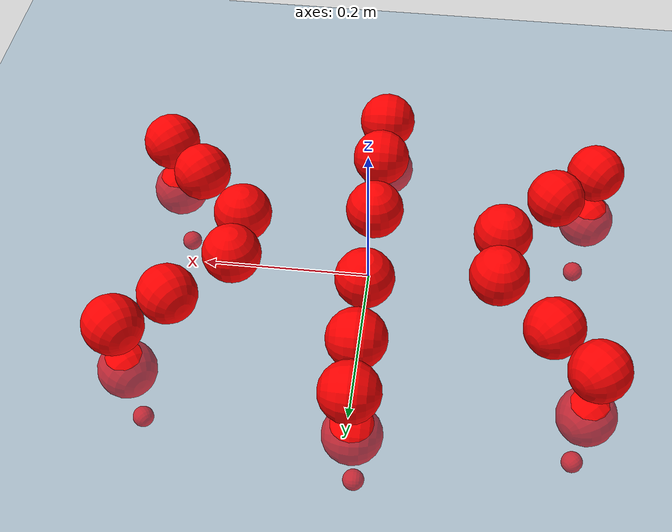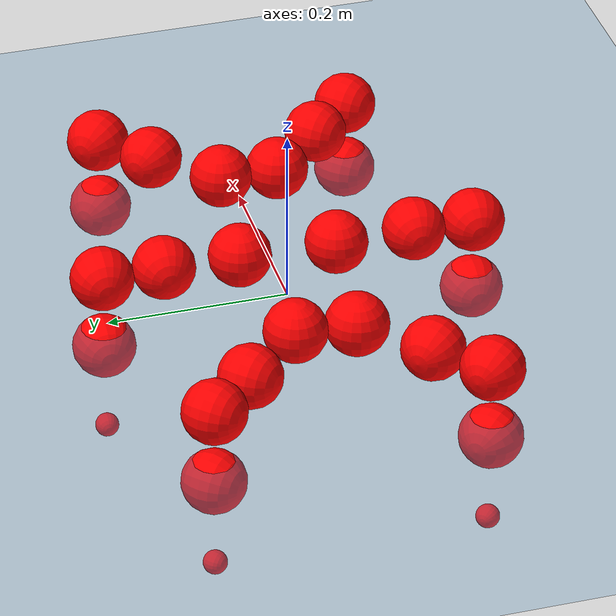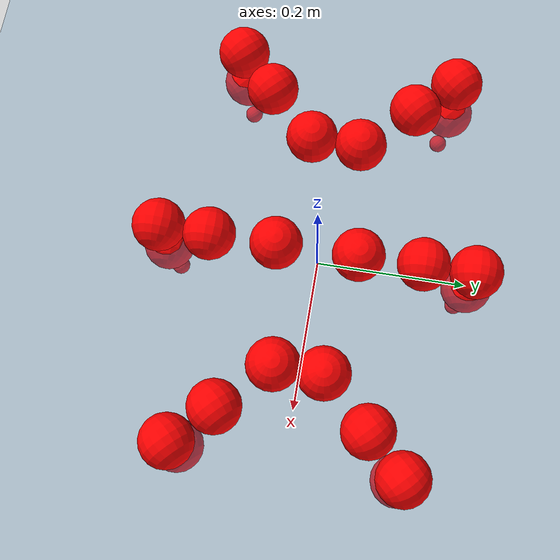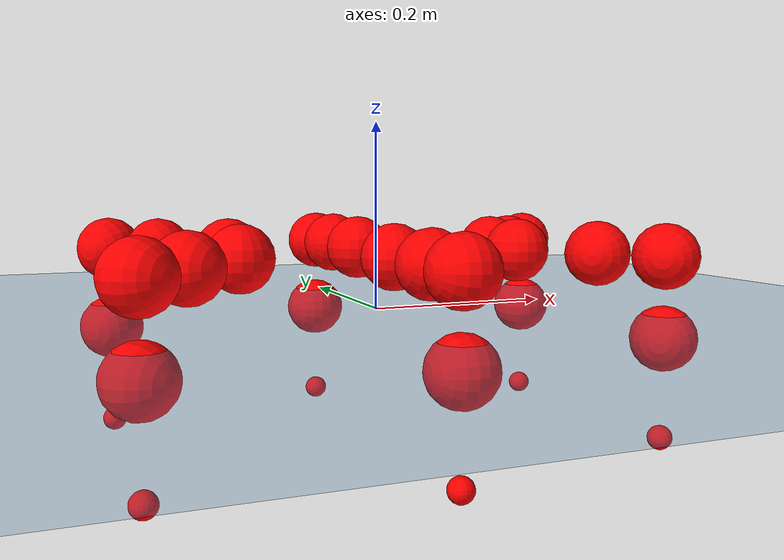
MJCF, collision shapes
<mujoco model="Golem">
  <compiler angle="radian" assetdir="assets" balanceinertia="true" inertiafromgeom="false"/>

  <option timestep="0.005" density="1.2" viscosity="2e-05"/>

  <size nkey="1"/>

  <visual>
    <quality shadowsize="8192"/>
    <map shadowclip="0.5"/>
  </visual>

  <default>
    <default class="/">
      <joint armature="0.01" damping="0.01" frictionloss="0.01"/>
      <geom contype="0" conaffinity="0" group="1" solref="-1000 -80"/>
      <site size="0.01 0.005 0.005" group="5"/>
      <general forcelimited="true" biastype="affine" gainprm="25" biasprm="0 -25 -0.5"/>
      <default class="visual">
        <geom type="mesh" group="2"/>
      </default>
      <default class="collision">
        <geom group="3"/>
      </default>
      <default class="foot">
        <geom size="0.01 0 0" condim="6" group="4" priority="1" solimp="0.015 1 0.01"/>
      </default>
      <default class="reward_collision_sphere">
        <geom group="5" rgba="1 0 0 1"/>
      </default>
    </default>
  </default>

  <asset>
    <texture type="skybox" colorspace="auto" name="//unnamed_texture_0" builtin="gradient" rgb1="0.95 0.95 0.95" rgb2="0.95 0.95 0.95" width="100" height="600"/>
    <texture type="2d" colorspace="auto" name="texplane" builtin="checker" rgb1="0.345 0.575 0.748" rgb2="0.345 0.575 0.748" markrgb="1 1 1" width="512" height="512"/>
    <material name="MatPlane" class="/" texture="texplane" texuniform="true" texrepeat="2 2" specular="0.9"/>
    <mesh name="body" class="/" file="body.stl" scale="0.001 0.001 0.001"/>
    <mesh name="coxa" class="/" file="coxa.stl" scale="0.001 0.001 0.001"/>
    <mesh name="femur" class="/" file="femur.stl" scale="0.001 0.001 0.001"/>
    <mesh name="tibia" class="/" file="tibia.stl" scale="0.001 0.001 0.001"/>
    <mesh name="tarsus" class="/" file="tarsus.stl" scale="0.001 0.001 0.001"/>
  </asset>

  <worldbody>
    <geom name="floor" class="/" size="100 100 0.125" type="plane" group="0" material="MatPlane"/>
    <light name="toplight_shadow" class="/" pos="0 0 5" dir="0.0990148 0.0990148 -0.990148" type="directional" ambient="0.04 0.04 0.04" diffuse="0.55 0.55 0.55" specular="0.12 0.12 0.12"/>
    <light name="toplight_fill" class="/" pos="0 0 5" dir="0.0990148 0.0990148 -0.990148" type="directional" castshadow="false" ambient="0.04 0.04 0.04" diffuse="0.3 0.3 0.3" specular="0.08 0.08 0.08"/>
    <body name="trunk" pos="-0.000134401 2.12251e-05 5.00337e-05" quat="1 0.000261628 -0.00010091 0.000713138">
      <inertial pos="6.10474e-05 0.0016559 -0.00199061" quat="0.999994 0.00109384 0.00221139 0.00259371" mass="2.41615" diaginertia="0.00945687 0.00108266 0.00845429"/>
      <joint name="//unnamed_joint_0" type="free"/>
      <geom name="//unnamed_geom_1" class="/" pos="0 0 0.0620718" quat="1 0 0 0" type="mesh" rgba="0.9 0.9 0.9 1" mesh="body"/>
      <site name="imu" class="/" pos="0.130452 0.00388546 0.101337" size="0.00867999"/>
      <camera name="track" class="/" pos="0 -1.28339 0" quat="0.707107 0.707107 0 0" mode="trackcom"/>
      <camera name="ego_camera" class="/" pos="0.129016 0 0.0969872" quat="-0.5 -0.5 0.5 0.5"/>
      <body name="coxa_RR" pos="-0.176877 -0.0532215 0.0616908" quat="0.382901 2.12832e-05 0.000526685 -0.923789">
        <inertial pos="-0.000467071 -0.000834833 -0.000742718" quat="0.999953 -0.00629776 0.0049022 -0.00548207" mass="0.135744" diaginertia="0.00978327 0.00109285 0.00879254"/>
        <joint name="coxa_joint_RR" class="/" pos="0 0 0" axis="-0.0014221 -0.000879366 -0.999999" range="-3.1421 3.10025" armature="0.00947316" damping="0.0027033" frictionloss="0.00859127"/>
        <geom name="//unnamed_geom_2" class="/" type="mesh" rgba="0.2 0.2 0.2 1" mesh="coxa"/>
        <geom name="//unnamed_geom_3" class="reward_collision_sphere" size="0.03472" pos="-0.0297729 0 0"/>
        <body name="femur_RR" pos="0.0592198 0.0013439 -0.000951299" quat="0.499995 -0.499931 0.500011 0.500064">
          <inertial pos="0.00126999 -0.00106509 0.000412322" quat="0.999983 -0.00426671 0.0039207 0.000389123" mass="0.130669" diaginertia="0.00955184 0.00108119 0.00857668"/>
          <joint name="femur_joint_RR" class="/" pos="0 0 0" axis="-0.000143803 0.000368531 -1" range="-3.15266 3.14737" armature="0.00874325" damping="0.00216029" frictionloss="0.00825653"/>
          <geom name="//unnamed_geom_4" class="/" type="mesh" rgba="0.9 0.9 0.9 1" mesh="femur"/>
          <geom name="//unnamed_geom_5" class="reward_collision_sphere" size="0.03472"/>
          <body name="tibia_RR" pos="0.000534681 -0.0689273 -0.000240964" quat="0.000201387 1 0.000128222 -0.000134539">
            <inertial pos="-0.000193733 0.000764161 9.35358e-06" quat="0.999988 -0.000606379 -0.00346521 -0.00336885" mass="0.133568" diaginertia="0.0094834 0.00108024 0.00859715"/>
            <joint name="tibia_joint_RR" class="/" pos="0 0 0" axis="-0.00260781 -0.00342447 0.999991" range="-3.12044 3.14509" armature="0.00869464" damping="0" frictionloss="0.00853983"/>
            <geom name="//unnamed_geom_6" class="/" type="mesh" rgba="0.2 0.2 0.2 1" mesh="tibia"/>
            <geom name="//unnamed_geom_7" class="reward_collision_sphere" size="0.03472"/>
            <body name="tarsus_RR" pos="0.0866214 0.00138294 0.000199037" quat="1 -0.000295604 -7.93013e-07 -4.59605e-05">
              <inertial pos="0.0611467 0.000411335 0.000834852" quat="0.500008 0.500012 0.499995 0.499986" mass="0.133064" diaginertia="0.00976931 0.00110351 0.00872858"/>
              <joint name="tarsus_joint_RR" class="/" pos="0 0 0" axis="0.000393558 0.000529505 1" stiffness="0.00375717" range="-3.13433 3.13724" armature="0.00888437" damping="0.0393939" frictionloss="0.00845489"/>
              <geom name="//unnamed_geom_8" class="/" type="mesh" rgba="0.9 0.9 0.9 1" mesh="tarsus"/>
              <geom name="foot_1" class="foot" size="0.00865951" pos="0.111152 0 0" quat="0 -0.707107 0 0.707107"/>
              <geom name="//unnamed_geom_10" class="reward_collision_sphere" size="0.03472"/>
              <geom name="//unnamed_geom_11" class="reward_collision_sphere" size="0.01302" pos="0.106686 0 0"/>
              <site name="foot_1" class="foot" pos="0.111152 0 0" quat="0 -0.707107 0 0.707107" size="0.00867999"/>
            </body>
          </body>
        </body>
      </body>
      <body name="coxa_RM" pos="-0.00170881 -0.084506 0.0605338" quat="0.707029 0.000160493 -0.000445881 -0.707184">
        <inertial pos="-0.00092531 0.000196594 0.000383259" quat="0.999999 0.000931444 0.00111585 0.000733988" mass="0.133243" diaginertia="0.00990224 0.00109399 0.00869474"/>
        <joint name="coxa_joint_RM" class="/" pos="0 0 0" axis="-0.000276501 9.15955e-05 -1" range="-3.13006 3.1333" armature="0.00872078" damping="0.00771178" frictionloss="0.00881285"/>
        <geom name="//unnamed_geom_12" class="/" type="mesh" rgba="0.2 0.2 0.2 1" mesh="coxa"/>
        <geom name="//unnamed_geom_13" class="reward_collision_sphere" size="0.03472" pos="-0.0297729 0 0"/>
        <body name="femur_RM" pos="0.0578568 0.00108907 0.000457355" quat="0.50005 -0.500239 0.500078 0.499632">
          <inertial pos="0.000476172 0.000421384 -0.000961604" quat="0.999962 0.00799132 -0.000333603 0.00334725" mass="0.126139" diaginertia="0.00950484 0.00106037 0.00839612"/>
          <joint name="femur_joint_RM" class="/" pos="0 0 0" axis="-0.000913404 -0.000359098 -1" range="-3.17635 3.14927" armature="0.00882194" damping="0.00921778" frictionloss="0.00868235"/>
          <geom name="//unnamed_geom_14" class="/" type="mesh" rgba="0.9 0.9 0.9 1" mesh="femur"/>
          <geom name="//unnamed_geom_15" class="reward_collision_sphere" size="0.03472"/>
          <body name="tibia_RM" pos="-0.000274483 -0.0671638 -0.00133963" quat="-0.000142093 1 -0.000860216 -0.000138604">
            <inertial pos="-8.15434e-05 -0.000840169 0.000489157" quat="0.999999 0.000389546 0.000557579 0.00148072" mass="0.130725" diaginertia="0.00959645 0.00106533 0.00833111"/>
            <joint name="tibia_joint_RM" class="/" pos="0 0 0" axis="-0.000889443 0.00033033 1" range="-3.14165 3.13769" armature="0.0084806" damping="0.00158589" frictionloss="0.00887251"/>
            <geom name="//unnamed_geom_16" class="/" type="mesh" rgba="0.2 0.2 0.2 1" mesh="tibia"/>
            <geom name="//unnamed_geom_17" class="reward_collision_sphere" size="0.03472"/>
            <body name="tarsus_RM" pos="0.0879107 0.000290594 0.000337537" quat="1 7.61849e-05 0.000297921 0.000489149">
              <inertial pos="0.0598236 0.000258534 7.58221e-05" quat="0.498573 0.501096 0.497337 0.502975" mass="0.130702" diaginertia="0.00956342 0.001087 0.00843904"/>
              <joint name="tarsus_joint_RM" class="/" pos="0 0 0" axis="0.00349108 -0.00265647 0.99999" range="-3.13892 3.17597" armature="0.00896268" damping="0.006136" frictionloss="0.0078725"/>
              <geom name="//unnamed_geom_18" class="/" type="mesh" rgba="0.9 0.9 0.9 1" mesh="tarsus"/>
              <geom name="foot_2" class="foot" size="0.00846643" pos="0.111152 0 0" quat="0 -0.707107 0 0.707107"/>
              <geom name="//unnamed_geom_20" class="reward_collision_sphere" size="0.03472"/>
              <geom name="//unnamed_geom_21" class="reward_collision_sphere" size="0.01302" pos="0.106686 0 0"/>
              <site name="foot_2" class="foot" pos="0.111152 0 0" quat="0 -0.707107 0 0.707107" size="0.00867999"/>
            </body>
          </body>
        </body>
      </body>
      <body name="coxa_RF" pos="0.1755 -0.0528476 0.0613654" quat="0.923868 2.38847e-05 0.000490764 -0.38271">
        <inertial pos="0.00154231 0.00139312 0.000101155" quat="0.999999 0.000107513 -0.00108514 -0.000644902" mass="0.131664" diaginertia="0.00967305 0.00109593 0.00856735"/>
        <joint name="coxa_joint_RF" class="/" pos="0 0 0" axis="-0.000720009 -9.67086e-05 -1" range="-3.15805 3.10928" armature="0.00912048" damping="0.00658807" frictionloss="0.00890573"/>
        <geom name="//unnamed_geom_22" class="/" type="mesh" rgba="0.2 0.2 0.2 1" mesh="coxa"/>
        <geom name="//unnamed_geom_23" class="reward_collision_sphere" size="0.03472" pos="-0.0297729 0 0"/>
        <body name="femur_RF" pos="0.058291 0.00016052 -0.000703797" quat="0.500302 -0.500143 0.499788 0.499767">
          <inertial pos="0.000311921 0.000335484 0.00180643" quat="0.999991 0.00406257 8.46113e-05 0.00151406" mass="0.12754" diaginertia="0.00944146 0.00106657 0.00825294"/>
          <joint name="femur_joint_RF" class="/" pos="0 0 0" axis="0.00821771 0.00435099 -0.999957" range="-3.14831 3.15157" armature="0.00953971" damping="0.00971246" frictionloss="0.0088204"/>
          <geom name="//unnamed_geom_24" class="/" type="mesh" rgba="0.9 0.9 0.9 1" mesh="femur"/>
          <geom name="//unnamed_geom_25" class="reward_collision_sphere" size="0.03472"/>
          <body name="tibia_RF" pos="0.000894233 -0.0699645 0.000147189" quat="-0.000255086 1 0.000302709 0.000296075">
            <inertial pos="0.000621942 7.08606e-05 0.000383133" quat="0.999997 0.00101713 0.000278712 0.00207845" mass="0.129909" diaginertia="0.00961552 0.00107767 0.00873856"/>
            <joint name="tibia_joint_RF" class="/" pos="0 0 0" axis="-0.00026399 0.000728889 1" range="-3.14202 3.16628" armature="0.00886547" damping="0.0104205" frictionloss="0.00829477"/>
            <geom name="//unnamed_geom_26" class="/" type="mesh" rgba="0.2 0.2 0.2 1" mesh="tibia"/>
            <geom name="//unnamed_geom_27" class="reward_collision_sphere" size="0.03472"/>
            <body name="tarsus_RF" pos="0.0861355 0.000312527 8.609e-05" quat="1 -0.000217196 0.000104076 0.000810223">
              <inertial pos="0.0588599 -6.28368e-05 -0.000409984" quat="0.499001 0.499659 0.500356 0.500982" mass="0.131288" diaginertia="0.00968889 0.00109181 0.00851207"/>
              <joint name="tarsus_joint_RF" class="/" pos="0 0 0" axis="-0.00497431 -0.00711588 0.999962" range="-3.14403 3.13456" armature="0.00871278" damping="0.00404144" frictionloss="0.00848111"/>
              <geom name="//unnamed_geom_28" class="/" type="mesh" rgba="0.9 0.9 0.9 1" mesh="tarsus"/>
              <geom name="foot_3" class="foot" size="0.00888419" pos="0.111152 0 0" quat="0 -0.707107 0 0.707107"/>
              <geom name="//unnamed_geom_30" class="reward_collision_sphere" size="0.03472"/>
              <geom name="//unnamed_geom_31" class="reward_collision_sphere" size="0.01302" pos="0.106686 0 0"/>
              <site name="foot_3" class="foot" pos="0.111152 0 0" quat="0 -0.707107 0 0.707107" size="0.00867999"/>
            </body>
          </body>
        </body>
      </body>
      <body name="coxa_LR" pos="-0.174221 0.0551769 0.0639325" quat="0.382272 -0.000220706 0.000171594 0.92405">
        <inertial pos="-0.000196373 -7.0842e-05 -0.00012303" quat="0.999999 -0.00108773 -0.000807873 -0.000879978" mass="0.131815" diaginertia="0.00948262 0.0010904 0.00835463"/>
        <joint name="coxa_joint_LR" class="/" pos="0 0 0" axis="-0.000332675 0.00874481 -0.999962" range="-3.12499 3.13715" armature="0.00911086" damping="0.00526481" frictionloss="0.0085605"/>
        <geom name="//unnamed_geom_32" class="/" type="mesh" rgba="0.2 0.2 0.2 1" mesh="coxa"/>
        <geom name="//unnamed_geom_33" class="reward_collision_sphere" size="0.03472" pos="-0.0297729 0 0"/>
        <body name="femur_LR" pos="0.0610894 -0.00233792 -0.00168026" quat="0.500142 -0.499695 0.500437 0.499725">
          <inertial pos="4.58482e-05 -0.000664296 -0.00106893" quat="0.999988 -0.00262832 0.00383039 0.00149676" mass="0.129229" diaginertia="0.00952283 0.00109744 0.00852776"/>
          <joint name="femur_joint_LR" class="/" pos="0 0 0" axis="-0.00195787 -0.000959622 0.999998" range="-3.16454 3.16157" armature="0.00859281" damping="0" frictionloss="0.00898559"/>
          <geom name="//unnamed_geom_34" class="/" type="mesh" rgba="0.9 0.9 0.9 1" mesh="femur"/>
          <geom name="//unnamed_geom_35" class="reward_collision_sphere" size="0.03472"/>
          <body name="tibia_LR" pos="0.000668978 -0.0697629 -0.00204333" quat="-0.000197183 1 -0.000164326 1.31803e-05">
            <inertial pos="-0.00213778 0.000929906 -0.00122364" quat="0.999998 0.00137434 -0.00132598 0.000970341" mass="0.13072" diaginertia="0.00954121 0.00109494 0.00855959"/>
            <joint name="tibia_joint_LR" class="/" pos="0 0 0" axis="0.000629671 -0.00187708 -0.999998" range="-3.11222 3.14791" armature="0.00903316" damping="0.00346786" frictionloss="0.00908535"/>
            <geom name="//unnamed_geom_36" class="/" type="mesh" rgba="0.2 0.2 0.2 1" mesh="tibia"/>
            <geom name="//unnamed_geom_37" class="reward_collision_sphere" size="0.03472"/>
            <body name="tarsus_LR" pos="0.0888482 0.000794077 0.00115258" quat="1 -6.32217e-05 9.46756e-05 -6.55062e-05">
              <inertial pos="0.060477 0.00066895 -0.000510753" quat="0.500002 0.500138 0.499937 0.499923" mass="0.134211" diaginertia="0.00984612 0.00110098 0.00871544"/>
              <joint name="tarsus_joint_LR" class="/" pos="0 0 0" axis="-0.00673832 -0.00637195 -0.999957" stiffness="0.00239557" range="-3.14646 3.13316" armature="0.00860786" damping="0.0288555" frictionloss="0.0088342"/>
              <geom name="//unnamed_geom_38" class="/" type="mesh" rgba="0.9 0.9 0.9 1" mesh="tarsus"/>
              <geom name="foot_4" class="foot" size="0.00829691" pos="0.111152 0 0" quat="0.707107 0 -0.707107 0"/>
              <geom name="//unnamed_geom_40" class="reward_collision_sphere" size="0.03472"/>
              <geom name="//unnamed_geom_41" class="reward_collision_sphere" size="0.01302" pos="0.106686 0 0"/>
              <site name="foot_4" class="foot" pos="0.111152 0 0" quat="0.707107 0 -0.707107 0" size="0.00867999"/>
            </body>
          </body>
        </body>
      </body>
      <body name="coxa_LM" pos="-0.00164355 0.0830329 0.0629082" quat="0.70723 -0.000138671 7.99858e-05 0.706984">
        <inertial pos="0.00170205 0.00167125 -0.00013548" quat="1 -3.59455e-05 -0.000186533 -7.66492e-05" mass="0.130937" diaginertia="0.00954915 0.00108885 0.00859921"/>
        <joint name="coxa_joint_LM" class="/" pos="0 0 0" axis="0.000246743 0.00196749 -0.999998" range="-3.14746 3.14763" armature="0.00906296" damping="0.00755964" frictionloss="0.00844627"/>
        <geom name="//unnamed_geom_42" class="/" type="mesh" rgba="0.2 0.2 0.2 1" mesh="coxa"/>
        <geom name="//unnamed_geom_43" class="reward_collision_sphere" size="0.03472" pos="-0.0297729 0 0"/>
        <body name="femur_LM" pos="0.0545294 0.000560752 -2.57151e-05" quat="0.49924 -0.499938 0.500301 0.50052">
          <inertial pos="4.71024e-05 -0.000645766 -9.34619e-05" quat="0.999998 -0.00044788 -0.0020283 -0.00012654" mass="0.130085" diaginertia="0.00961396 0.00108309 0.00849068"/>
          <joint name="femur_joint_LM" class="/" pos="0 0 0" axis="-0.000550776 0.000661779 1" range="-3.15985 3.13763" armature="0.00795518" damping="0.00164519" frictionloss="0.00882519"/>
          <geom name="//unnamed_geom_44" class="/" type="mesh" rgba="0.9 0.9 0.9 1" mesh="femur"/>
          <geom name="//unnamed_geom_45" class="reward_collision_sphere" size="0.03472"/>
          <body name="tibia_LM" pos="0.00133474 -0.0679306 0.000439255" quat="3.04606e-05 1 2.16156e-05 6.20951e-05">
            <inertial pos="-0.00112123 -0.0010116 -0.000863279" quat="0.99999 -4.33078e-05 -0.00394694 0.0020784" mass="0.129071" diaginertia="0.00959709 0.00110264 0.00877184"/>
            <joint name="tibia_joint_LM" class="/" pos="0 0 0" axis="-5.75715e-05 6.31665e-07 -1" range="-3.1223 3.14301" armature="0.00873842" damping="0" frictionloss="0.00887401"/>
            <geom name="//unnamed_geom_46" class="/" type="mesh" rgba="0.2 0.2 0.2 1" mesh="tibia"/>
            <geom name="//unnamed_geom_47" class="reward_collision_sphere" size="0.03472"/>
            <body name="tarsus_LM" pos="0.0862982 0.000494114 -0.00178262" quat="1 -9.81612e-05 3.68818e-05 -0.000156162">
              <inertial pos="0.0604479 -0.000834803 -2.65213e-05" quat="0.49908 0.502917 0.49996 0.498029" mass="0.135547" diaginertia="0.00965014 0.00111019 0.00859312"/>
              <joint name="tarsus_joint_LM" class="/" pos="0 0 0" axis="-0.00701624 -0.00336202 -0.99997" stiffness="0.00252027" range="-3.14115 3.14114" armature="0.0088237" damping="0.0108498" frictionloss="0.00865453"/>
              <geom name="//unnamed_geom_48" class="/" type="mesh" rgba="0.9 0.9 0.9 1" mesh="tarsus"/>
              <geom name="foot_5" class="foot" size="0.00838725" pos="0.111152 0 0" quat="0.707107 0 -0.707107 0"/>
              <geom name="//unnamed_geom_50" class="reward_collision_sphere" size="0.03472"/>
              <geom name="//unnamed_geom_51" class="reward_collision_sphere" size="0.01302" pos="0.106686 0 0"/>
              <site name="foot_5" class="foot" pos="0.111152 0 0" quat="0.707107 0 -0.707107 0" size="0.00867999"/>
            </body>
          </body>
        </body>
      </body>
      <body name="coxa_LF" pos="0.176847 0.0535064 0.061406" quat="0.923936 0.000154931 5.59315e-05 0.382547">
        <inertial pos="0.000204824 -0.000365853 0.000258376" quat="1 -0.000161619 -1.05568e-05 9.01717e-05" mass="0.128404" diaginertia="0.00954079 0.00108342 0.00852629"/>
        <joint name="coxa_joint_LF" class="/" pos="0 0 0" axis="-0.000699595 -0.00202861 -0.999998" range="-3.12987 3.15738" armature="0.00847394" damping="0.00309485" frictionloss="0.00864935"/>
        <geom name="//unnamed_geom_52" class="/" type="mesh" rgba="0.2 0.2 0.2 1" mesh="coxa"/>
        <geom name="//unnamed_geom_53" class="reward_collision_sphere" size="0.03472" pos="-0.0297729 0 0"/>
        <body name="femur_LF" pos="0.0592237 0.00229482 -0.00256781" quat="0.49999 -0.499662 0.500257 0.500091">
          <inertial pos="-0.000931502 -0.000922898 0.00054404" quat="0.999999 -0.000456204 -0.000378816 0.00108513" mass="0.132056" diaginertia="0.00956882 0.00109146 0.00864154"/>
          <joint name="femur_joint_LF" class="/" pos="0 0 0" axis="0.00305668 -0.00585206 0.999978" range="-3.14094 3.11483" armature="0.00844962" damping="0" frictionloss="0.00863002"/>
          <geom name="//unnamed_geom_54" class="/" type="mesh" rgba="0.9 0.9 0.9 1" mesh="femur"/>
          <geom name="//unnamed_geom_55" class="reward_collision_sphere" size="0.03472"/>
          <body name="tibia_LF" pos="-0.000599839 -0.0696373 -0.000160451" quat="5.35572e-05 1 2.28981e-05 2.54043e-06">
            <inertial pos="-0.000814586 -0.00084068 0.000434045" quat="0.999979 -0.00224724 -0.004271 -0.00422488" mass="0.129928" diaginertia="0.00962483 0.00107059 0.00850668"/>
            <joint name="tibia_joint_LF" class="/" pos="0 0 0" axis="0.000258862 -0.00521206 -0.999986" range="-3.14689 3.15373" armature="0.00786108" damping="0.00321006" frictionloss="0.00874853"/>
            <geom name="//unnamed_geom_56" class="/" type="mesh" rgba="0.2 0.2 0.2 1" mesh="tibia"/>
            <geom name="//unnamed_geom_57" class="reward_collision_sphere" size="0.03472"/>
            <body name="tarsus_LF" pos="0.0875788 -0.00067083 -3.49396e-05" quat="1 0.000799911 0.000489773 0.000271624">
              <inertial pos="0.0602732 -0.000713634 0.000406764" quat="0.500014 0.499926 0.499947 0.500113" mass="0.1304" diaginertia="0.00965355 0.00108119 0.00851238"/>
              <joint name="tarsus_joint_LF" class="/" pos="0 0 0" axis="0.00399854 0.00488152 -0.99998" stiffness="0.00084591" range="-3.12112 3.14872" armature="0.00889113" damping="0.0120132" frictionloss="0.00881792"/>
              <geom name="//unnamed_geom_58" class="/" type="mesh" rgba="0.9 0.9 0.9 1" mesh="tarsus"/>
              <geom name="foot_6" class="foot" size="0.00841436" pos="0.111152 0 0" quat="0.707107 0 -0.707107 0"/>
              <geom name="//unnamed_geom_60" class="reward_collision_sphere" size="0.03472"/>
              <geom name="//unnamed_geom_61" class="reward_collision_sphere" size="0.01302" pos="0.106686 0 0"/>
              <site name="foot_6" class="foot" pos="0.111152 0 0" quat="0.707107 0 -0.707107 0" size="0.00867999"/>
            </body>
          </body>
        </body>
      </body>
    </body>
  </worldbody>

  <contact>
    <pair class="/" geom1="floor" geom2="foot_1" name="//unnamed_contact_0"/>
    <pair class="/" geom1="floor" geom2="foot_2" name="//unnamed_contact_1"/>
    <pair class="/" geom1="floor" geom2="foot_3" name="//unnamed_contact_2"/>
    <pair class="/" geom1="floor" geom2="foot_4" name="//unnamed_contact_3"/>
    <pair class="/" geom1="floor" geom2="foot_5" name="//unnamed_contact_4"/>
    <pair class="/" geom1="floor" geom2="foot_6" name="//unnamed_contact_5"/>
  </contact>

  <actuator>
    <general name="coxa_joint_RR" class="/" joint="coxa_joint_RR" forcerange="-6.45415 6.45415" gainprm="20.6507" biasprm="0 -20.6507 -0.450264"/>
    <general name="femur_joint_RR" class="/" joint="femur_joint_RR" forcerange="-6.34843 6.34843" gainprm="20.6507" biasprm="0 -20.6507 -0.450264"/>
    <general name="tibia_joint_RR" class="/" joint="tibia_joint_RR" forcerange="-6.31565 6.31565" gainprm="20.6507" biasprm="0 -20.6507 -0.450264"/>
    <general name="tarsus_joint_RR" class="/" joint="tarsus_joint_RR" forcerange="-6.46295 6.46295" gainprm="20.6507" biasprm="0 -20.6507 -0.450264"/>
    <general name="coxa_joint_RM" class="/" joint="coxa_joint_RM" forcerange="-6.50781 6.50781" gainprm="20.6507" biasprm="0 -20.6507 -0.450264"/>
    <general name="femur_joint_RM" class="/" joint="femur_joint_RM" forcerange="-6.23444 6.23444" gainprm="20.6507" biasprm="0 -20.6507 -0.450264"/>
    <general name="tibia_joint_RM" class="/" joint="tibia_joint_RM" forcerange="-6.34044 6.34044" gainprm="20.6507" biasprm="0 -20.6507 -0.450264"/>
    <general name="tarsus_joint_RM" class="/" joint="tarsus_joint_RM" forcerange="-6.12107 6.12107" gainprm="20.6507" biasprm="0 -20.6507 -0.450264"/>
    <general name="coxa_joint_RF" class="/" joint="coxa_joint_RF" forcerange="-6.1728 6.1728" gainprm="20.6507" biasprm="0 -20.6507 -0.450264"/>
    <general name="femur_joint_RF" class="/" joint="femur_joint_RF" forcerange="-6.28691 6.28691" gainprm="20.6507" biasprm="0 -20.6507 -0.450264"/>
    <general name="tibia_joint_RF" class="/" joint="tibia_joint_RF" forcerange="-6.34478 6.34478" gainprm="20.6507" biasprm="0 -20.6507 -0.450264"/>
    <general name="tarsus_joint_RF" class="/" joint="tarsus_joint_RF" forcerange="-6.10493 6.10493" gainprm="20.6507" biasprm="0 -20.6507 -0.450264"/>
    <general name="coxa_joint_LR" class="/" joint="coxa_joint_LR" forcerange="-6.21236 6.21236" gainprm="20.6507" biasprm="0 -20.6507 -0.450264"/>
    <general name="femur_joint_LR" class="/" joint="femur_joint_LR" forcerange="-6.51652 6.51652" gainprm="20.6507" biasprm="0 -20.6507 -0.450264"/>
    <general name="tibia_joint_LR" class="/" joint="tibia_joint_LR" forcerange="-5.98942 5.98942" gainprm="20.6507" biasprm="0 -20.6507 -0.450264"/>
    <general name="tarsus_joint_LR" class="/" joint="tarsus_joint_LR" forcerange="-6.74167 6.74167" gainprm="20.6507" biasprm="0 -20.6507 -0.450264"/>
    <general name="coxa_joint_LM" class="/" joint="coxa_joint_LM" forcerange="-6.13519 6.13519" gainprm="20.6507" biasprm="0 -20.6507 -0.450264"/>
    <general name="femur_joint_LM" class="/" joint="femur_joint_LM" forcerange="-6.36718 6.36718" gainprm="20.6507" biasprm="0 -20.6507 -0.450264"/>
    <general name="tibia_joint_LM" class="/" joint="tibia_joint_LM" forcerange="-6.37348 6.37348" gainprm="20.6507" biasprm="0 -20.6507 -0.450264"/>
    <general name="tarsus_joint_LM" class="/" joint="tarsus_joint_LM" forcerange="-6.56939 6.56939" gainprm="20.6507" biasprm="0 -20.6507 -0.450264"/>
    <general name="coxa_joint_LF" class="/" joint="coxa_joint_LF" forcerange="-6.34141 6.34141" gainprm="20.6507" biasprm="0 -20.6507 -0.450264"/>
    <general name="femur_joint_LF" class="/" joint="femur_joint_LF" forcerange="-6.33209 6.33209" gainprm="20.6507" biasprm="0 -20.6507 -0.450264"/>
    <general name="tibia_joint_LF" class="/" joint="tibia_joint_LF" forcerange="-6.1229 6.1229" gainprm="20.6507" biasprm="0 -20.6507 -0.450264"/>
    <general name="tarsus_joint_LF" class="/" joint="tarsus_joint_LF" forcerange="-6.22126 6.22126" gainprm="20.6507" biasprm="0 -20.6507 -0.450264"/>
  </actuator>

  <sensor>
    <gyro site="imu" name="imu_angular_velocity"/>
    <velocimeter site="imu" name="imu_linear_velocity"/>
    <framelinvel objtype="site" objname="foot_1" name="foot_1_global_linear_velocity"/>
    <framelinvel objtype="site" objname="foot_2" name="foot_2_global_linear_velocity"/>
    <framelinvel objtype="site" objname="foot_3" name="foot_3_global_linear_velocity"/>
    <framelinvel objtype="site" objname="foot_4" name="foot_4_global_linear_velocity"/>
    <framelinvel objtype="site" objname="foot_5" name="foot_5_global_linear_velocity"/>
    <framelinvel objtype="site" objname="foot_6" name="foot_6_global_linear_velocity"/>
  </sensor>

  <keyframe>
    <key name="home" qpos="0 0 0.1457 1 0 0 0 0 0 0 0 0 0 0 0 0 0 0 0 0 0 0 0 0 0 0 0 0 0 0 0"/>
  </keyframe>
</mujoco>
